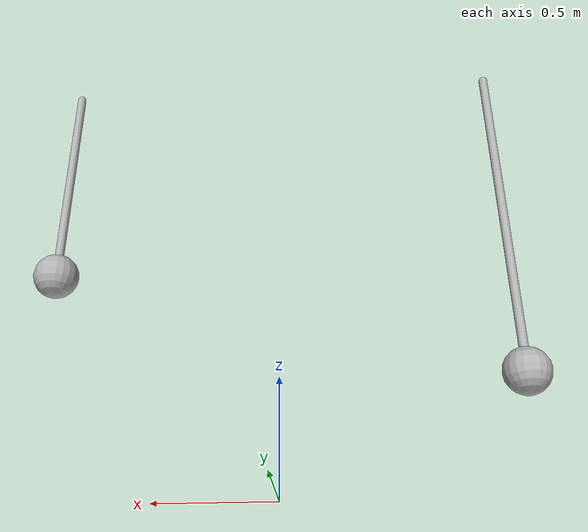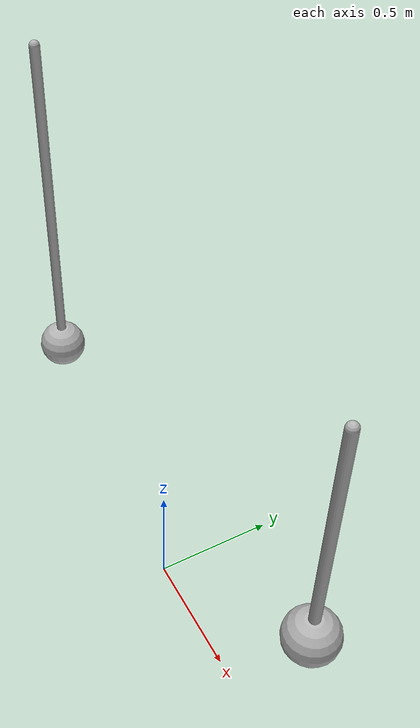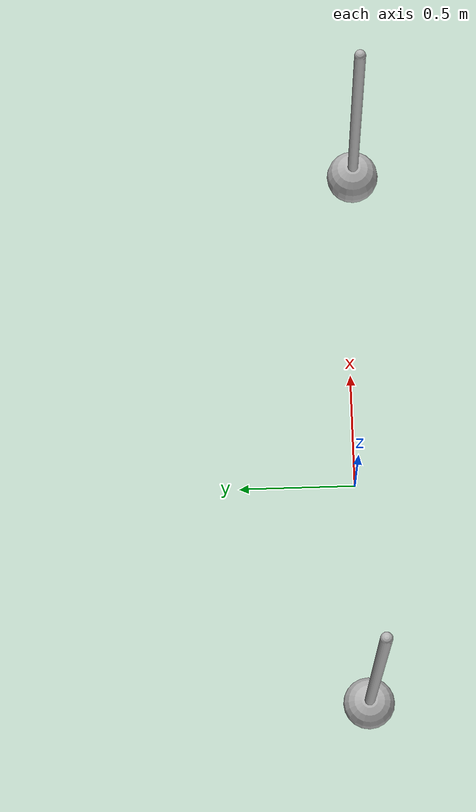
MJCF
<mujoco>
  <option gravity="0 0 -9.81" />
  <worldbody>
    <body name="object_1" pos="-1 0 2">
      <geom type="capsule" fromto="0 0 0 0 0 -1.5" size="0.02" rgba="0.7 0.7 0.7 1" />
      <joint type="hinge" axis="0 1 0" name="object_1_joint" />
    </body>
    <body name="object_2" pos="-1 0 0.5">
      <geom type="sphere" size="0.1" mass="0.5" rgba="0.7 0.7 0.7 1" />
    </body>
    <body name="object_3" pos="1 0 2">
      <geom type="capsule" fromto="0 0 0 0 0 -1.0" size="0.02" rgba="0.7 0.7 0.7 1" />
      <joint type="hinge" axis="0 1 0" name="object_3_joint" />
    </body>
    <body name="object_4" pos="1 0 1.0">
      <geom type="sphere" size="0.1" mass="0.5" rgba="0.7 0.7 0.7 1" />
    </body>
  </worldbody>
</mujoco>
